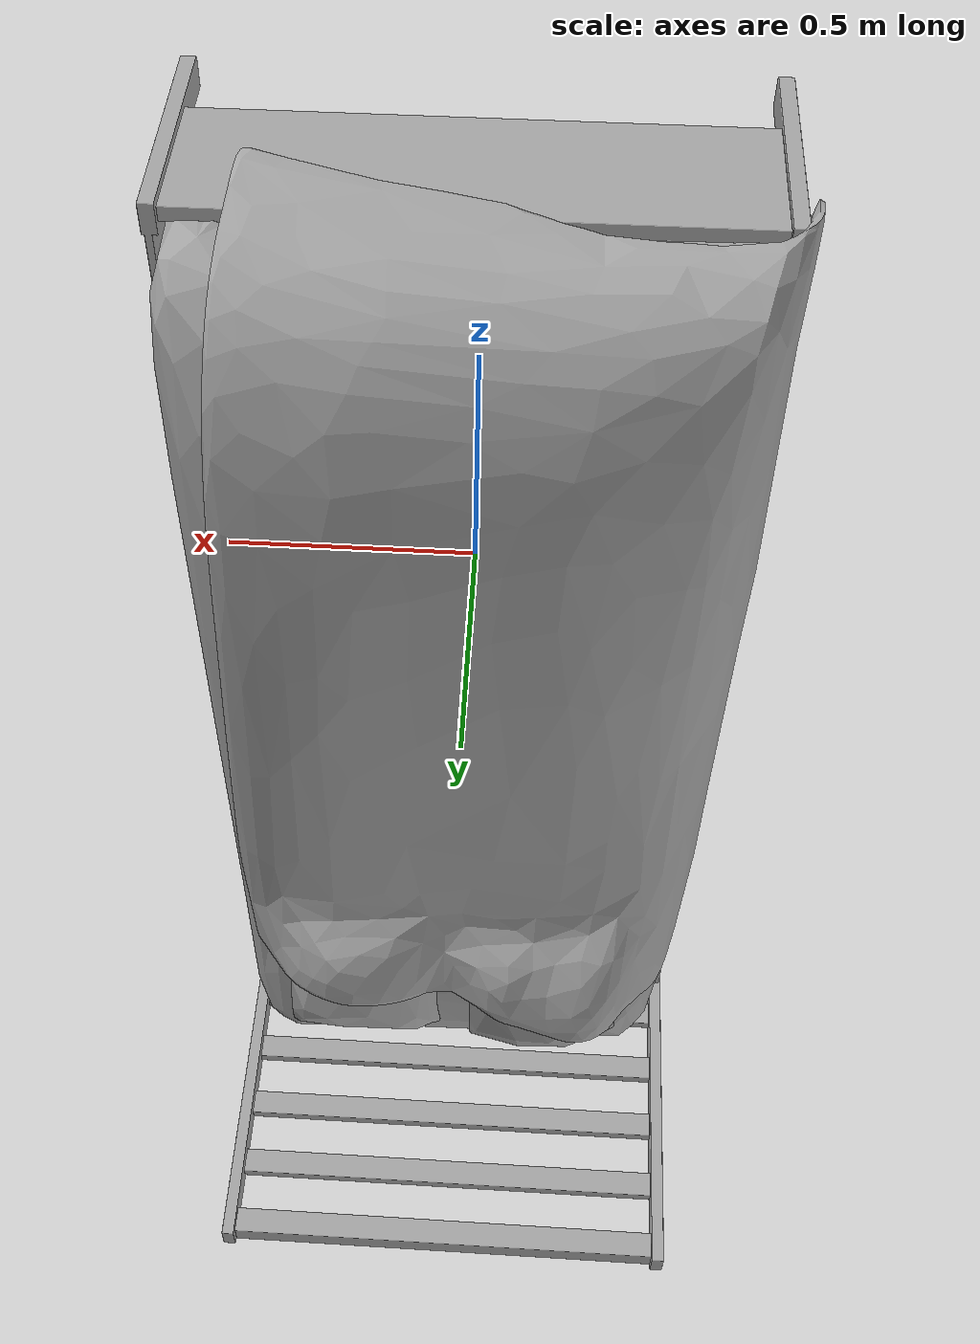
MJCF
<mujoco model="bed_single_reduced">
  <default>
    <default class="visual">
      <geom group="2" type="mesh" contype="0" conaffinity="0"/>
    </default>
    <default class="collision">
      <geom group="3" type="mesh"/>
    </default>
  </default>
  <asset>
    <material name="Pillow_2" specular="0.0" shininess="0.0" rgba="0.640000 0.640000 0.640000 1.000000"/>
    <material name="lakan" specular="0.0" shininess="0.0" rgba="0.640000 0.640000 0.640000 1.000000"/>
    <material name="lister" specular="0.0" shininess="0.0" rgba="0.640000 0.640000 0.640000 1.000000"/>
    <material name="täcke" specular="0.0" shininess="0.0" rgba="0.640000 0.640000 0.640000 1.000000"/>
    <mesh file="bed_single_reduced_0.obj"/>
    <mesh file="bed_single_reduced_1.obj"/>
    <mesh file="bed_single_reduced_2.obj"/>
    <mesh file="bed_single_reduced_3.obj"/>
  </asset>
  <worldbody>
    <body name="bed_single_reduced">
      <geom mesh="bed_single_reduced_0" material="lakan" class="visual"/>
      <geom mesh="bed_single_reduced_1" material="täcke" class="visual"/>
      <geom mesh="bed_single_reduced_2" material="Pillow_2" class="visual"/>
      <geom mesh="bed_single_reduced_3" material="lister" class="visual"/>
      <geom mesh="bed_single_reduced_0" class="collision"/>
      <geom mesh="bed_single_reduced_1" class="collision"/>
      <geom mesh="bed_single_reduced_2" class="collision"/>
      <geom mesh="bed_single_reduced_3" class="collision"/>
    </body>
  </worldbody>
</mujoco>
